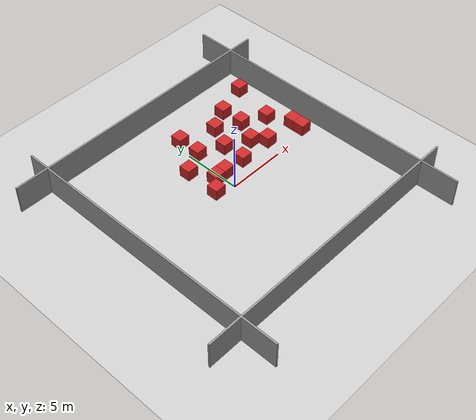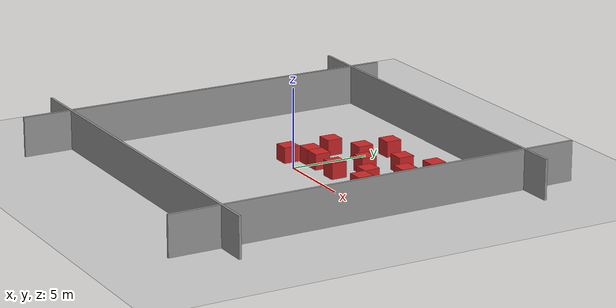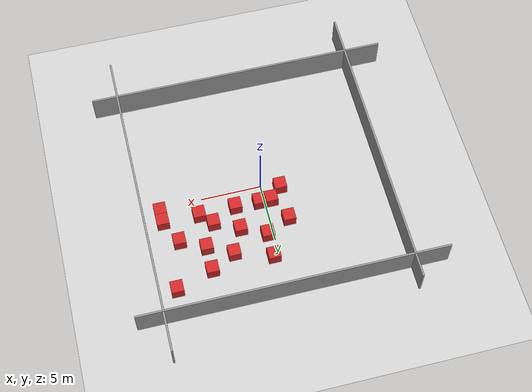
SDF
<sdf version="1.7">
 <world name="default">
  <model name="ground_plane">
   <static>1</static>
   <link name="link">
    <collision name="collision">
     <geometry><plane><normal>0 0 1</normal><size>100 100</size></plane></geometry>
     <surface><friction><ode><mu>100</mu><mu2>50</mu2></ode></friction></surface>
    </collision>
    <visual name="visual">
     <cast_shadows>0</cast_shadows>
     <geometry><plane><normal>0 0 1</normal><size>100 100</size></plane></geometry>
     <material>
      <script><uri>file://media/materials/scripts/gazebo.material</uri><name>Gazebo/Grey</name></script>
     </material>
    </visual>
   </link>
  </model>
  <model name="unit_box_red_0_clone">
   <link name="link">
    <inertial>
     <mass>1</mass>
     <inertia>
      <ixx>0.166667</ixx>
      <ixy>0</ixy>
      <ixz>0</ixz>
      <iyy>0.166667</iyy>
      <iyz>0</iyz>
      <izz>0.166667</izz>
     </inertia>
    </inertial>
    <visual name="visual">
     <geometry><box><size>1 1 1</size></box></geometry>
     <material>
      <script><name>Gazebo/Red</name><uri>file://media/materials/scripts/gazebo.material</uri></script>
      <shader type="pixel"><normal_map>__default__</normal_map></shader>
      <ambient>1 0 0 1</ambient>
      <diffuse>1 0 0 1</diffuse>
      <specular>1 0 0 1</specular>
      <emissive>1 0 0 1</emissive>
     </material>
    </visual>
    <collision name="collision">
     <geometry><box><size>1 1 1</size></box></geometry>
     <surface>
      <friction>
       <ode><mu>1</mu><mu2>1</mu2><fdir1>0 0 0</fdir1><slip1>0</slip1><slip2>0</slip2></ode>
       <torsional>
        <coefficient>1</coefficient>
        <patch_radius>0</patch_radius>
        <surface_radius>0</surface_radius>
        <use_patch_radius>1</use_patch_radius>
        <ode><slip>0</slip></ode>
       </torsional>
      </friction>
      <bounce><restitution_coefficient>0</restitution_coefficient><threshold>1e+06</threshold></bounce>
      <contact>
       <collide_without_contact>0</collide_without_contact>
       <collide_without_contact_bitmask>1</collide_without_contact_bitmask>
       <collide_bitmask>1</collide_bitmask>
       <ode>
        <soft_cfm>0</soft_cfm>
        <soft_erp>0.2</soft_erp>
        <kp>1e+13</kp>
        <kd>1</kd>
        <max_vel>0.01</max_vel>
        <min_depth>0</min_depth>
       </ode>
       <bullet>
        <split_impulse>1</split_impulse>
        <split_impulse_penetration_threshold>-0.01</split_impulse_penetration_threshold>
        <soft_cfm>0</soft_cfm>
        <soft_erp>0.2</soft_erp>
        <kp>1e+13</kp>
        <kd>1</kd>
       </bullet>
      </contact>
     </surface>
    </collision>
   </link>
   <static>0</static>
   <pose>0.486456 1.49281 0.499995 0 1e-05 0</pose>
  </model>
  <model name="unit_box_red_0_clone_0">
   <link name="link">
    <inertial>
     <mass>1</mass>
     <inertia>
      <ixx>0.166667</ixx>
      <ixy>0</ixy>
      <ixz>0</ixz>
      <iyy>0.166667</iyy>
      <iyz>0</iyz>
      <izz>0.166667</izz>
     </inertia>
    </inertial>
    <visual name="visual">
     <geometry><box><size>1 1 1</size></box></geometry>
     <material>
      <script><name>Gazebo/Red</name><uri>file://media/materials/scripts/gazebo.material</uri></script>
      <shader type="pixel"><normal_map>__default__</normal_map></shader>
      <ambient>1 0 0 1</ambient>
      <diffuse>1 0 0 1</diffuse>
      <specular>1 0 0 1</specular>
      <emissive>1 0 0 1</emissive>
     </material>
    </visual>
    <collision name="collision">
     <geometry><box><size>1 1 1</size></box></geometry>
     <surface>
      <friction>
       <ode><mu>1</mu><mu2>1</mu2><fdir1>0 0 0</fdir1><slip1>0</slip1><slip2>0</slip2></ode>
       <torsional>
        <coefficient>1</coefficient>
        <patch_radius>0</patch_radius>
        <surface_radius>0</surface_radius>
        <use_patch_radius>1</use_patch_radius>
        <ode><slip>0</slip></ode>
       </torsional>
      </friction>
      <bounce><restitution_coefficient>0</restitution_coefficient><threshold>1e+06</threshold></bounce>
      <contact>
       <collide_without_contact>0</collide_without_contact>
       <collide_without_contact_bitmask>1</collide_without_contact_bitmask>
       <collide_bitmask>1</collide_bitmask>
       <ode>
        <soft_cfm>0</soft_cfm>
        <soft_erp>0.2</soft_erp>
        <kp>1e+13</kp>
        <kd>1</kd>
        <max_vel>0.01</max_vel>
        <min_depth>0</min_depth>
       </ode>
       <bullet>
        <split_impulse>1</split_impulse>
        <split_impulse_penetration_threshold>-0.01</split_impulse_penetration_threshold>
        <soft_cfm>0</soft_cfm>
        <soft_erp>0.2</soft_erp>
        <kp>1e+13</kp>
        <kd>1</kd>
       </bullet>
      </contact>
     </surface>
    </collision>
   </link>
   <static>0</static>
   <pose>2.47641 1.46765 0.499995 0 1e-05 0</pose>
  </model>
  <model name="unit_box_red_0_clone_4">
   <link name="link">
    <inertial>
     <mass>1</mass>
     <inertia>
      <ixx>0.166667</ixx>
      <ixy>0</ixy>
      <ixz>0</ixz>
      <iyy>0.166667</iyy>
      <iyz>0</iyz>
      <izz>0.166667</izz>
     </inertia>
    </inertial>
    <visual name="visual">
     <geometry><box><size>1 1 1</size></box></geometry>
     <material>
      <script><name>Gazebo/Red</name><uri>file://media/materials/scripts/gazebo.material</uri></script>
      <shader type="pixel"><normal_map>__default__</normal_map></shader>
      <ambient>1 0 0 1</ambient>
      <diffuse>1 0 0 1</diffuse>
      <specular>1 0 0 1</specular>
      <emissive>1 0 0 1</emissive>
     </material>
    </visual>
    <collision name="collision">
     <geometry><box><size>1 1 1</size></box></geometry>
     <surface>
      <friction>
       <ode><mu>1</mu><mu2>1</mu2><fdir1>0 0 0</fdir1><slip1>0</slip1><slip2>0</slip2></ode>
       <torsional>
        <coefficient>1</coefficient>
        <patch_radius>0</patch_radius>
        <surface_radius>0</surface_radius>
        <use_patch_radius>1</use_patch_radius>
        <ode><slip>0</slip></ode>
       </torsional>
      </friction>
      <bounce><restitution_coefficient>0</restitution_coefficient><threshold>1e+06</threshold></bounce>
      <contact>
       <collide_without_contact>0</collide_without_contact>
       <collide_without_contact_bitmask>1</collide_without_contact_bitmask>
       <collide_bitmask>1</collide_bitmask>
       <ode>
        <soft_cfm>0</soft_cfm>
        <soft_erp>0.2</soft_erp>
        <kp>1e+13</kp>
        <kd>1</kd>
        <max_vel>0.01</max_vel>
        <min_depth>0</min_depth>
       </ode>
       <bullet>
        <split_impulse>1</split_impulse>
        <split_impulse_penetration_threshold>-0.01</split_impulse_penetration_threshold>
        <soft_cfm>0</soft_cfm>
        <soft_erp>0.2</soft_erp>
        <kp>1e+13</kp>
        <kd>1</kd>
       </bullet>
      </contact>
     </surface>
    </collision>
   </link>
   <static>0</static>
   <pose>-1.51509 0.49126 0.499995 -0 -1e-05 0.000645</pose>
  </model>
  <model name="unit_box_red_0_clone_5">
   <link name="link">
    <inertial>
     <mass>1</mass>
     <inertia>
      <ixx>0.166667</ixx>
      <ixy>0</ixy>
      <ixz>0</ixz>
      <iyy>0.166667</iyy>
      <iyz>0</iyz>
      <izz>0.166667</izz>
     </inertia>
    </inertial>
    <visual name="visual">
     <geometry><box><size>1 1 1</size></box></geometry>
     <material>
      <script><name>Gazebo/Red</name><uri>file://media/materials/scripts/gazebo.material</uri></script>
      <shader type="pixel"><normal_map>__default__</normal_map></shader>
      <ambient>1 0 0 1</ambient>
      <diffuse>1 0 0 1</diffuse>
      <specular>1 0 0 1</specular>
      <emissive>1 0 0 1</emissive>
     </material>
    </visual>
    <collision name="collision">
     <geometry><box><size>1 1 1</size></box></geometry>
     <surface>
      <friction>
       <ode><mu>1</mu><mu2>1</mu2><fdir1>0 0 0</fdir1><slip1>0</slip1><slip2>0</slip2></ode>
       <torsional>
        <coefficient>1</coefficient>
        <patch_radius>0</patch_radius>
        <surface_radius>0</surface_radius>
        <use_patch_radius>1</use_patch_radius>
        <ode><slip>0</slip></ode>
       </torsional>
      </friction>
      <bounce><restitution_coefficient>0</restitution_coefficient><threshold>1e+06</threshold></bounce>
      <contact>
       <collide_without_contact>0</collide_without_contact>
       <collide_without_contact_bitmask>1</collide_without_contact_bitmask>
       <collide_bitmask>1</collide_bitmask>
       <ode>
        <soft_cfm>0</soft_cfm>
        <soft_erp>0.2</soft_erp>
        <kp>1e+13</kp>
        <kd>1</kd>
        <max_vel>0.01</max_vel>
        <min_depth>0</min_depth>
       </ode>
       <bullet>
        <split_impulse>1</split_impulse>
        <split_impulse_penetration_threshold>-0.01</split_impulse_penetration_threshold>
        <soft_cfm>0</soft_cfm>
        <soft_erp>0.2</soft_erp>
        <kp>1e+13</kp>
        <kd>1</kd>
       </bullet>
      </contact>
     </surface>
    </collision>
   </link>
   <static>0</static>
   <pose>4.5201 2.5135 0.499995 0 1e-05 0.006824</pose>
  </model>
  <model name="unit_box_red_0_clone_6">
   <link name="link">
    <inertial>
     <mass>1</mass>
     <inertia>
      <ixx>0.166667</ixx>
      <ixy>0</ixy>
      <ixz>0</ixz>
      <iyy>0.166667</iyy>
      <iyz>0</iyz>
      <izz>0.166667</izz>
     </inertia>
    </inertial>
    <visual name="visual">
     <geometry><box><size>1 1 1</size></box></geometry>
     <material>
      <script><name>Gazebo/Red</name><uri>file://media/materials/scripts/gazebo.material</uri></script>
      <shader type="pixel"><normal_map>__default__</normal_map></shader>
      <ambient>1 0 0 1</ambient>
      <diffuse>1 0 0 1</diffuse>
      <specular>1 0 0 1</specular>
      <emissive>1 0 0 1</emissive>
     </material>
    </visual>
    <collision name="collision">
     <geometry><box><size>1 1 1</size></box></geometry>
     <surface>
      <friction>
       <ode><mu>1</mu><mu2>1</mu2><fdir1>0 0 0</fdir1><slip1>0</slip1><slip2>0</slip2></ode>
       <torsional>
        <coefficient>1</coefficient>
        <patch_radius>0</patch_radius>
        <surface_radius>0</surface_radius>
        <use_patch_radius>1</use_patch_radius>
        <ode><slip>0</slip></ode>
       </torsional>
      </friction>
      <bounce><restitution_coefficient>0</restitution_coefficient><threshold>1e+06</threshold></bounce>
      <contact>
       <collide_without_contact>0</collide_without_contact>
       <collide_without_contact_bitmask>1</collide_without_contact_bitmask>
       <collide_bitmask>1</collide_bitmask>
       <ode>
        <soft_cfm>0</soft_cfm>
        <soft_erp>0.2</soft_erp>
        <kp>1e+13</kp>
        <kd>1</kd>
        <max_vel>0.01</max_vel>
        <min_depth>0</min_depth>
       </ode>
       <bullet>
        <split_impulse>1</split_impulse>
        <split_impulse_penetration_threshold>-0.01</split_impulse_penetration_threshold>
        <soft_cfm>0</soft_cfm>
        <soft_erp>0.2</soft_erp>
        <kp>1e+13</kp>
        <kd>1</kd>
       </bullet>
      </contact>
     </surface>
    </collision>
   </link>
   <static>0</static>
   <pose>5.48575 1.52037 0.499995 0 -1e-05 0.007591</pose>
  </model>
  <model name="unit_box_red_0_clone_7">
   <link name="link">
    <inertial>
     <mass>1</mass>
     <inertia>
      <ixx>0.166667</ixx>
      <ixy>0</ixy>
      <ixz>0</ixz>
      <iyy>0.166667</iyy>
      <iyz>0</iyz>
      <izz>0.166667</izz>
     </inertia>
    </inertial>
    <visual name="visual">
     <geometry><box><size>1 1 1</size></box></geometry>
     <material>
      <script><name>Gazebo/Red</name><uri>file://media/materials/scripts/gazebo.material</uri></script>
      <shader type="pixel"><normal_map>__default__</normal_map></shader>
      <ambient>1 0 0 1</ambient>
      <diffuse>1 0 0 1</diffuse>
      <specular>1 0 0 1</specular>
      <emissive>1 0 0 1</emissive>
     </material>
    </visual>
    <collision name="collision">
     <geometry><box><size>1 1 1</size></box></geometry>
     <surface>
      <friction>
       <ode><mu>1</mu><mu2>1</mu2><fdir1>0 0 0</fdir1><slip1>0</slip1><slip2>0</slip2></ode>
       <torsional>
        <coefficient>1</coefficient>
        <patch_radius>0</patch_radius>
        <surface_radius>0</surface_radius>
        <use_patch_radius>1</use_patch_radius>
        <ode><slip>0</slip></ode>
       </torsional>
      </friction>
      <bounce><restitution_coefficient>0</restitution_coefficient><threshold>1e+06</threshold></bounce>
      <contact>
       <collide_without_contact>0</collide_without_contact>
       <collide_without_contact_bitmask>1</collide_without_contact_bitmask>
       <collide_bitmask>1</collide_bitmask>
       <ode>
        <soft_cfm>0</soft_cfm>
        <soft_erp>0.2</soft_erp>
        <kp>1e+13</kp>
        <kd>1</kd>
        <max_vel>0.01</max_vel>
        <min_depth>0</min_depth>
       </ode>
       <bullet>
        <split_impulse>1</split_impulse>
        <split_impulse_penetration_threshold>-0.01</split_impulse_penetration_threshold>
        <soft_cfm>0</soft_cfm>
        <soft_erp>0.2</soft_erp>
        <kp>1e+13</kp>
        <kd>1</kd>
       </bullet>
      </contact>
     </surface>
    </collision>
   </link>
   <static>0</static>
   <pose>2.51729 3.51054 0.499995 0 1e-05 0</pose>
  </model>
  <model name="unit_box_red_0_clone_8">
   <link name="link">
    <inertial>
     <mass>1</mass>
     <inertia>
      <ixx>0.166667</ixx>
      <ixy>0</ixy>
      <ixz>0</ixz>
      <iyy>0.166667</iyy>
      <iyz>0</iyz>
      <izz>0.166667</izz>
     </inertia>
    </inertial>
    <visual name="visual">
     <geometry><box><size>1 1 1</size></box></geometry>
     <material>
      <script><name>Gazebo/Red</name><uri>file://media/materials/scripts/gazebo.material</uri></script>
      <shader type="pixel"><normal_map>__default__</normal_map></shader>
      <ambient>1 0 0 1</ambient>
      <diffuse>1 0 0 1</diffuse>
      <specular>1 0 0 1</specular>
      <emissive>1 0 0 1</emissive>
     </material>
    </visual>
    <collision name="collision">
     <geometry><box><size>1 1 1</size></box></geometry>
     <surface>
      <friction>
       <ode><mu>1</mu><mu2>1</mu2><fdir1>0 0 0</fdir1><slip1>0</slip1><slip2>0</slip2></ode>
       <torsional>
        <coefficient>1</coefficient>
        <patch_radius>0</patch_radius>
        <surface_radius>0</surface_radius>
        <use_patch_radius>1</use_patch_radius>
        <ode><slip>0</slip></ode>
       </torsional>
      </friction>
      <bounce><restitution_coefficient>0</restitution_coefficient><threshold>1e+06</threshold></bounce>
      <contact>
       <collide_without_contact>0</collide_without_contact>
       <collide_without_contact_bitmask>1</collide_without_contact_bitmask>
       <collide_bitmask>1</collide_bitmask>
       <ode>
        <soft_cfm>0</soft_cfm>
        <soft_erp>0.2</soft_erp>
        <kp>1e+13</kp>
        <kd>1</kd>
        <max_vel>0.01</max_vel>
        <min_depth>0</min_depth>
       </ode>
       <bullet>
        <split_impulse>1</split_impulse>
        <split_impulse_penetration_threshold>-0.01</split_impulse_penetration_threshold>
        <soft_cfm>0</soft_cfm>
        <soft_erp>0.2</soft_erp>
        <kp>1e+13</kp>
        <kd>1</kd>
       </bullet>
      </contact>
     </surface>
    </collision>
   </link>
   <static>0</static>
   <pose>0.488659 4.49142 0.499995 0 1e-05 0</pose>
  </model>
  <model name="unit_box_red_0_clone_9">
   <link name="link">
    <inertial>
     <mass>1</mass>
     <inertia>
      <ixx>0.166667</ixx>
      <ixy>0</ixy>
      <ixz>0</ixz>
      <iyy>0.166667</iyy>
      <iyz>0</iyz>
      <izz>0.166667</izz>
     </inertia>
    </inertial>
    <visual name="visual">
     <geometry><box><size>1 1 1</size></box></geometry>
     <material>
      <script><name>Gazebo/Red</name><uri>file://media/materials/scripts/gazebo.material</uri></script>
      <shader type="pixel"><normal_map>__default__</normal_map></shader>
      <ambient>1 0 0 1</ambient>
      <diffuse>1 0 0 1</diffuse>
      <specular>1 0 0 1</specular>
      <emissive>1 0 0 1</emissive>
     </material>
    </visual>
    <collision name="collision">
     <geometry><box><size>1 1 1</size></box></geometry>
     <surface>
      <friction>
       <ode><mu>1</mu><mu2>1</mu2><fdir1>0 0 0</fdir1><slip1>0</slip1><slip2>0</slip2></ode>
       <torsional>
        <coefficient>1</coefficient>
        <patch_radius>0</patch_radius>
        <surface_radius>0</surface_radius>
        <use_patch_radius>1</use_patch_radius>
        <ode><slip>0</slip></ode>
       </torsional>
      </friction>
      <bounce><restitution_coefficient>0</restitution_coefficient><threshold>1e+06</threshold></bounce>
      <contact>
       <collide_without_contact>0</collide_without_contact>
       <collide_without_contact_bitmask>1</collide_without_contact_bitmask>
       <collide_bitmask>1</collide_bitmask>
       <ode>
        <soft_cfm>0</soft_cfm>
        <soft_erp>0.2</soft_erp>
        <kp>1e+13</kp>
        <kd>1</kd>
        <max_vel>0.01</max_vel>
        <min_depth>0</min_depth>
       </ode>
       <bullet>
        <split_impulse>1</split_impulse>
        <split_impulse_penetration_threshold>-0.01</split_impulse_penetration_threshold>
        <soft_cfm>0</soft_cfm>
        <soft_erp>0.2</soft_erp>
        <kp>1e+13</kp>
        <kd>1</kd>
       </bullet>
      </contact>
     </surface>
    </collision>
   </link>
   <static>0</static>
   <pose>-1.4954 3.48826 0.499995 0 1e-05 0</pose>
  </model>
  <model name="unit_box_red_0_clone_14">
   <link name="link">
    <inertial>
     <mass>1</mass>
     <inertia>
      <ixx>0.166667</ixx>
      <ixy>0</ixy>
      <ixz>0</ixz>
      <iyy>0.166667</iyy>
      <iyz>0</iyz>
      <izz>0.166667</izz>
     </inertia>
    </inertial>
    <visual name="visual">
     <geometry><box><size>1 1 1</size></box></geometry>
     <material>
      <script><name>Gazebo/Red</name><uri>file://media/materials/scripts/gazebo.material</uri></script>
      <shader type="pixel"><normal_map>__default__</normal_map></shader>
      <ambient>1 0 0 1</ambient>
      <diffuse>1 0 0 1</diffuse>
      <specular>1 0 0 1</specular>
      <emissive>1 0 0 1</emissive>
     </material>
    </visual>
    <collision name="collision">
     <geometry><box><size>1 1 1</size></box></geometry>
     <surface>
      <friction>
       <ode><mu>1</mu><mu2>1</mu2><fdir1>0 0 0</fdir1><slip1>0</slip1><slip2>0</slip2></ode>
       <torsional>
        <coefficient>1</coefficient>
        <patch_radius>0</patch_radius>
        <surface_radius>0</surface_radius>
        <use_patch_radius>1</use_patch_radius>
        <ode><slip>0</slip></ode>
       </torsional>
      </friction>
      <bounce><restitution_coefficient>0</restitution_coefficient><threshold>1e+06</threshold></bounce>
      <contact>
       <collide_without_contact>0</collide_without_contact>
       <collide_without_contact_bitmask>1</collide_without_contact_bitmask>
       <collide_bitmask>1</collide_bitmask>
       <ode>
        <soft_cfm>0</soft_cfm>
        <soft_erp>0.2</soft_erp>
        <kp>1e+13</kp>
        <kd>1</kd>
        <max_vel>0.01</max_vel>
        <min_depth>0</min_depth>
       </ode>
       <bullet>
        <split_impulse>1</split_impulse>
        <split_impulse_penetration_threshold>-0.01</split_impulse_penetration_threshold>
        <soft_cfm>0</soft_cfm>
        <soft_erp>0.2</soft_erp>
        <kp>1e+13</kp>
        <kd>1</kd>
       </bullet>
      </contact>
     </surface>
    </collision>
   </link>
   <static>0</static>
   <pose>5.50451 4.49142 0.499995 0 1e-05 0</pose>
  </model>
  <model name="unit_box_red_0_clone_15">
   <link name="link">
    <inertial>
     <mass>1</mass>
     <inertia>
      <ixx>0.166667</ixx>
      <ixy>0</ixy>
      <ixz>0</ixz>
      <iyy>0.166667</iyy>
      <iyz>0</iyz>
      <izz>0.166667</izz>
     </inertia>
    </inertial>
    <visual name="visual">
     <geometry><box><size>1 1 1</size></box></geometry>
     <material>
      <script><name>Gazebo/Red</name><uri>file://media/materials/scripts/gazebo.material</uri></script>
      <shader type="pixel"><normal_map>__default__</normal_map></shader>
      <ambient>1 0 0 1</ambient>
      <diffuse>1 0 0 1</diffuse>
      <specular>1 0 0 1</specular>
      <emissive>1 0 0 1</emissive>
     </material>
    </visual>
    <collision name="collision">
     <geometry><box><size>1 1 1</size></box></geometry>
     <surface>
      <friction>
       <ode><mu>1</mu><mu2>1</mu2><fdir1>0 0 0</fdir1><slip1>0</slip1><slip2>0</slip2></ode>
       <torsional>
        <coefficient>1</coefficient>
        <patch_radius>0</patch_radius>
        <surface_radius>0</surface_radius>
        <use_patch_radius>1</use_patch_radius>
        <ode><slip>0</slip></ode>
       </torsional>
      </friction>
      <bounce><restitution_coefficient>0</restitution_coefficient><threshold>1e+06</threshold></bounce>
      <contact>
       <collide_without_contact>0</collide_without_contact>
       <collide_without_contact_bitmask>1</collide_without_contact_bitmask>
       <collide_bitmask>1</collide_bitmask>
       <ode>
        <soft_cfm>0</soft_cfm>
        <soft_erp>0.2</soft_erp>
        <kp>1e+13</kp>
        <kd>1</kd>
        <max_vel>0.01</max_vel>
        <min_depth>0</min_depth>
       </ode>
       <bullet>
        <split_impulse>1</split_impulse>
        <split_impulse_penetration_threshold>-0.01</split_impulse_penetration_threshold>
        <soft_cfm>0</soft_cfm>
        <soft_erp>0.2</soft_erp>
        <kp>1e+13</kp>
        <kd>1</kd>
       </bullet>
      </contact>
     </surface>
    </collision>
   </link>
   <static>0</static>
   <pose>3.49817 5.51689 0.499995 0 1e-05 0</pose>
  </model>
  <model name="unit_box_red_0_clone_16">
   <link name="link">
    <inertial>
     <mass>1</mass>
     <inertia>
      <ixx>0.166667</ixx>
      <ixy>0</ixy>
      <ixz>0</ixz>
      <iyy>0.166667</iyy>
      <iyz>0</iyz>
      <izz>0.166667</izz>
     </inertia>
    </inertial>
    <visual name="visual">
     <geometry><box><size>1 1 1</size></box></geometry>
     <material>
      <script><name>Gazebo/Red</name><uri>file://media/materials/scripts/gazebo.material</uri></script>
      <shader type="pixel"><normal_map>__default__</normal_map></shader>
      <ambient>1 0 0 1</ambient>
      <diffuse>1 0 0 1</diffuse>
      <specular>1 0 0 1</specular>
      <emissive>1 0 0 1</emissive>
     </material>
    </visual>
    <collision name="collision">
     <geometry><box><size>1 1 1</size></box></geometry>
     <surface>
      <friction>
       <ode><mu>1</mu><mu2>1</mu2><fdir1>0 0 0</fdir1><slip1>0</slip1><slip2>0</slip2></ode>
       <torsional>
        <coefficient>1</coefficient>
        <patch_radius>0</patch_radius>
        <surface_radius>0</surface_radius>
        <use_patch_radius>1</use_patch_radius>
        <ode><slip>0</slip></ode>
       </torsional>
      </friction>
      <bounce><restitution_coefficient>0</restitution_coefficient><threshold>1e+06</threshold></bounce>
      <contact>
       <collide_without_contact>0</collide_without_contact>
       <collide_without_contact_bitmask>1</collide_without_contact_bitmask>
       <collide_bitmask>1</collide_bitmask>
       <ode>
        <soft_cfm>0</soft_cfm>
        <soft_erp>0.2</soft_erp>
        <kp>1e+13</kp>
        <kd>1</kd>
        <max_vel>0.01</max_vel>
        <min_depth>0</min_depth>
       </ode>
       <bullet>
        <split_impulse>1</split_impulse>
        <split_impulse_penetration_threshold>-0.01</split_impulse_penetration_threshold>
        <soft_cfm>0</soft_cfm>
        <soft_erp>0.2</soft_erp>
        <kp>1e+13</kp>
        <kd>1</kd>
       </bullet>
      </contact>
     </surface>
    </collision>
   </link>
   <static>0</static>
   <pose>5.48222 6.52006 0.499995 0 1e-05 0</pose>
  </model>
  <model name="wall_20x20">
   <pose>-0.40857 -0.043281 0 0 -0 0</pose>
   <link name="Wall_10">
    <collision name="Wall_10_Collision">
     <geometry><box><size>26.5 0.15 2.5</size></box></geometry>
     <pose>0 0 1.25 0 -0 0</pose>
    </collision>
    <visual name="Wall_10_Visual">
     <pose>0 0 1.25 0 -0 0</pose>
     <geometry><box><size>26.5 0.15 2.5</size></box></geometry>
     <material>
      <script><uri>file://media/materials/scripts/gazebo.material</uri><name>Gazebo/Grey</name></script>
      <ambient>1 1 1 1</ambient>
     </material>
     <meta><layer>0</layer></meta>
    </visual>
    <pose>10.3388 -0 0 0 -0 1.5708</pose>
   </link>
   <link name="Wall_4">
    <collision name="Wall_4_Collision">
     <geometry><box><size>25 0.15 2.5</size></box></geometry>
     <pose>0 0 1.25 0 -0 0</pose>
    </collision>
    <visual name="Wall_4_Visual">
     <pose>0 0 1.25 0 -0 0</pose>
     <geometry><box><size>25 0.15 2.5</size></box></geometry>
     <material>
      <script><uri>file://media/materials/scripts/gazebo.material</uri><name>Gazebo/Grey</name></script>
      <ambient>1 1 1 1</ambient>
     </material>
     <meta><layer>0</layer></meta>
    </visual>
    <pose>-0.041839 -9.9552 0 0 -0 0</pose>
   </link>
   <link name="Wall_6">
    <collision name="Wall_6_Collision">
     <geometry><box><size>25 0.15 2.5</size></box></geometry>
     <pose>0 0 1.25 0 -0 0</pose>
    </collision>
    <visual name="Wall_6_Visual">
     <pose>0 0 1.25 0 -0 0</pose>
     <geometry><box><size>25 0.15 2.5</size></box></geometry>
     <material>
      <script><uri>file://media/materials/scripts/gazebo.material</uri><name>Gazebo/Grey</name></script>
      <ambient>1 1 1 1</ambient>
     </material>
     <meta><layer>0</layer></meta>
    </visual>
    <pose>0.041839 9.9241 0 0 -0 0</pose>
   </link>
   <link name="Wall_8">
    <collision name="Wall_8_Collision">
     <geometry><box><size>25 0.15 2.5</size></box></geometry>
     <pose>0 0 1.25 0 -0 0</pose>
    </collision>
    <visual name="Wall_8_Visual">
     <pose>0 0 1.25 0 -0 0</pose>
     <geometry><box><size>25 0.15 2.5</size></box></geometry>
     <material>
      <script><uri>file://media/materials/scripts/gazebo.material</uri><name>Gazebo/Grey</name></script>
      <ambient>1 1 1 1</ambient>
     </material>
     <meta><layer>0</layer></meta>
    </visual>
    <pose>-9.52541 -0.606599 0 0 -0 -1.5708</pose>
   </link>
   <static>1</static>
  </model>
  <model name="unit_box_red_0_clone_16_clone">
   <link name="link">
    <inertial>
     <mass>1</mass>
     <inertia>
      <ixx>0.166667</ixx>
      <ixy>0</ixy>
      <ixz>0</ixz>
      <iyy>0.166667</iyy>
      <iyz>0</iyz>
      <izz>0.166667</izz>
     </inertia>
    </inertial>
    <visual name="visual">
     <geometry><box><size>1 1 1</size></box></geometry>
     <material>
      <script><name>Gazebo/Red</name><uri>file://media/materials/scripts/gazebo.material</uri></script>
      <shader type="pixel"><normal_map>__default__</normal_map></shader>
      <ambient>1 0 0 1</ambient>
      <diffuse>1 0 0 1</diffuse>
      <specular>1 0 0 1</specular>
      <emissive>1 0 0 1</emissive>
     </material>
    </visual>
    <collision name="collision">
     <geometry><box><size>1 1 1</size></box></geometry>
     <surface>
      <friction>
       <ode><mu>1</mu><mu2>1</mu2><fdir1>0 0 0</fdir1><slip1>0</slip1><slip2>0</slip2></ode>
       <torsional>
        <coefficient>1</coefficient>
        <patch_radius>0</patch_radius>
        <surface_radius>0</surface_radius>
        <use_patch_radius>1</use_patch_radius>
        <ode><slip>0</slip></ode>
       </torsional>
      </friction>
      <bounce><restitution_coefficient>0</restitution_coefficient><threshold>1e+06</threshold></bounce>
      <contact>
       <collide_without_contact>0</collide_without_contact>
       <collide_without_contact_bitmask>1</collide_without_contact_bitmask>
       <collide_bitmask>1</collide_bitmask>
       <ode>
        <soft_cfm>0</soft_cfm>
        <soft_erp>0.2</soft_erp>
        <kp>1e+13</kp>
        <kd>1</kd>
        <max_vel>0.01</max_vel>
        <min_depth>0</min_depth>
       </ode>
       <bullet>
        <split_impulse>1</split_impulse>
        <split_impulse_penetration_threshold>-0.01</split_impulse_penetration_threshold>
        <soft_cfm>0</soft_cfm>
        <soft_erp>0.2</soft_erp>
        <kp>1e+13</kp>
        <kd>1</kd>
       </bullet>
      </contact>
     </surface>
    </collision>
   </link>
   <static>0</static>
   <pose>0.48706 6.48435 0.499995 0 1e-05 0</pose>
  </model>
  <model name="unit_box_red_0_clone_16_clone_4">
   <link name="link">
    <inertial>
     <mass>1</mass>
     <inertia>
      <ixx>0.166667</ixx>
      <ixy>0</ixy>
      <ixz>0</ixz>
      <iyy>0.166667</iyy>
      <iyz>0</iyz>
      <izz>0.166667</izz>
     </inertia>
    </inertial>
    <visual name="visual">
     <geometry><box><size>1 1 1</size></box></geometry>
     <material>
      <script><name>Gazebo/Red</name><uri>file://media/materials/scripts/gazebo.material</uri></script>
      <shader type="pixel"><normal_map>__default__</normal_map></shader>
      <ambient>1 0 0 1</ambient>
      <diffuse>1 0 0 1</diffuse>
      <specular>1 0 0 1</specular>
      <emissive>1 0 0 1</emissive>
     </material>
    </visual>
    <collision name="collision">
     <geometry><box><size>1 1 1</size></box></geometry>
     <surface>
      <friction>
       <ode><mu>1</mu><mu2>1</mu2><fdir1>0 0 0</fdir1><slip1>0</slip1><slip2>0</slip2></ode>
       <torsional>
        <coefficient>1</coefficient>
        <patch_radius>0</patch_radius>
        <surface_radius>0</surface_radius>
        <use_patch_radius>1</use_patch_radius>
        <ode><slip>0</slip></ode>
       </torsional>
      </friction>
      <bounce><restitution_coefficient>0</restitution_coefficient><threshold>1e+06</threshold></bounce>
      <contact>
       <collide_without_contact>0</collide_without_contact>
       <collide_without_contact_bitmask>1</collide_without_contact_bitmask>
       <collide_bitmask>1</collide_bitmask>
       <ode>
        <soft_cfm>0</soft_cfm>
        <soft_erp>0.2</soft_erp>
        <kp>1e+13</kp>
        <kd>1</kd>
        <max_vel>0.01</max_vel>
        <min_depth>0</min_depth>
       </ode>
       <bullet>
        <split_impulse>1</split_impulse>
        <split_impulse_penetration_threshold>-0.01</split_impulse_penetration_threshold>
        <soft_cfm>0</soft_cfm>
        <soft_erp>0.2</soft_erp>
        <kp>1e+13</kp>
        <kd>1</kd>
       </bullet>
      </contact>
     </surface>
    </collision>
   </link>
   <static>0</static>
   <pose>7.51314 3.48793 0.499995 0 1e-05 0</pose>
  </model>
  <model name="unit_box_red_0_clone_16_clone_5">
   <link name="link">
    <inertial>
     <mass>1</mass>
     <inertia>
      <ixx>0.166667</ixx>
      <ixy>0</ixy>
      <ixz>0</ixz>
      <iyy>0.166667</iyy>
      <iyz>0</iyz>
      <izz>0.166667</izz>
     </inertia>
    </inertial>
    <visual name="visual">
     <geometry><box><size>1 1 1</size></box></geometry>
     <material>
      <script><name>Gazebo/Red</name><uri>file://media/materials/scripts/gazebo.material</uri></script>
      <shader type="pixel"><normal_map>__default__</normal_map></shader>
      <ambient>1 0 0 1</ambient>
      <diffuse>1 0 0 1</diffuse>
      <specular>1 0 0 1</specular>
      <emissive>1 0 0 1</emissive>
     </material>
    </visual>
    <collision name="collision">
     <geometry><box><size>1 1 1</size></box></geometry>
     <surface>
      <friction>
       <ode><mu>1</mu><mu2>1</mu2><fdir1>0 0 0</fdir1><slip1>0</slip1><slip2>0</slip2></ode>
       <torsional>
        <coefficient>1</coefficient>
        <patch_radius>0</patch_radius>
        <surface_radius>0</surface_radius>
        <use_patch_radius>1</use_patch_radius>
        <ode><slip>0</slip></ode>
       </torsional>
      </friction>
      <bounce><restitution_coefficient>0</restitution_coefficient><threshold>1e+06</threshold></bounce>
      <contact>
       <collide_without_contact>0</collide_without_contact>
       <collide_without_contact_bitmask>1</collide_without_contact_bitmask>
       <collide_bitmask>1</collide_bitmask>
       <ode>
        <soft_cfm>0</soft_cfm>
        <soft_erp>0.2</soft_erp>
        <kp>1e+13</kp>
        <kd>1</kd>
        <max_vel>0.01</max_vel>
        <min_depth>0</min_depth>
       </ode>
       <bullet>
        <split_impulse>1</split_impulse>
        <split_impulse_penetration_threshold>-0.01</split_impulse_penetration_threshold>
        <soft_cfm>0</soft_cfm>
        <soft_erp>0.2</soft_erp>
        <kp>1e+13</kp>
        <kd>1</kd>
       </bullet>
      </contact>
     </surface>
    </collision>
   </link>
   <static>0</static>
   <pose>8.4775 1.47372 0.499995 -0 -1e-05 -9e-06</pose>
  </model>
  <model name="unit_box_red_0_clone_16_clone_6">
   <link name="link">
    <inertial>
     <mass>1</mass>
     <inertia>
      <ixx>0.166667</ixx>
      <ixy>0</ixy>
      <ixz>0</ixz>
      <iyy>0.166667</iyy>
      <iyz>0</iyz>
      <izz>0.166667</izz>
     </inertia>
    </inertial>
    <visual name="visual">
     <geometry><box><size>1 1 1</size></box></geometry>
     <material>
      <script><name>Gazebo/Red</name><uri>file://media/materials/scripts/gazebo.material</uri></script>
      <shader type="pixel"><normal_map>__default__</normal_map></shader>
      <ambient>1 0 0 1</ambient>
      <diffuse>1 0 0 1</diffuse>
      <specular>1 0 0 1</specular>
      <emissive>1 0 0 1</emissive>
     </material>
    </visual>
    <collision name="collision">
     <geometry><box><size>1 1 1</size></box></geometry>
     <surface>
      <friction>
       <ode><mu>1</mu><mu2>1</mu2><fdir1>0 0 0</fdir1><slip1>0</slip1><slip2>0</slip2></ode>
       <torsional>
        <coefficient>1</coefficient>
        <patch_radius>0</patch_radius>
        <surface_radius>0</surface_radius>
        <use_patch_radius>1</use_patch_radius>
        <ode><slip>0</slip></ode>
       </torsional>
      </friction>
      <bounce><restitution_coefficient>0</restitution_coefficient><threshold>1e+06</threshold></bounce>
      <contact>
       <collide_without_contact>0</collide_without_contact>
       <collide_without_contact_bitmask>1</collide_without_contact_bitmask>
       <collide_bitmask>1</collide_bitmask>
       <ode>
        <soft_cfm>0</soft_cfm>
        <soft_erp>0.2</soft_erp>
        <kp>1e+13</kp>
        <kd>1</kd>
        <max_vel>0.01</max_vel>
        <min_depth>0</min_depth>
       </ode>
       <bullet>
        <split_impulse>1</split_impulse>
        <split_impulse_penetration_threshold>-0.01</split_impulse_penetration_threshold>
        <soft_cfm>0</soft_cfm>
        <soft_erp>0.2</soft_erp>
        <kp>1e+13</kp>
        <kd>1</kd>
       </bullet>
      </contact>
     </surface>
    </collision>
   </link>
   <static>0</static>
   <pose>8.47751 0.47371 0.499995 0 1e-05 -1e-06</pose>
  </model>
  <model name="unit_box_red_0_clone_16_clone_23">
   <link name="link">
    <inertial>
     <mass>1</mass>
     <inertia>
      <ixx>0.166667</ixx>
      <ixy>0</ixy>
      <ixz>0</ixz>
      <iyy>0.166667</iyy>
      <iyz>0</iyz>
      <izz>0.166667</izz>
     </inertia>
    </inertial>
    <visual name="visual">
     <geometry><box><size>1 1 1</size></box></geometry>
     <material>
      <script><name>Gazebo/Red</name><uri>file://media/materials/scripts/gazebo.material</uri></script>
      <shader type="pixel"><normal_map>__default__</normal_map></shader>
      <ambient>1 0 0 1</ambient>
      <diffuse>1 0 0 1</diffuse>
      <specular>1 0 0 1</specular>
      <emissive>1 0 0 1</emissive>
     </material>
    </visual>
    <collision name="collision">
     <geometry><box><size>1 1 1</size></box></geometry>
     <surface>
      <friction>
       <ode><mu>1</mu><mu2>1</mu2><fdir1>0 0 0</fdir1><slip1>0</slip1><slip2>0</slip2></ode>
       <torsional>
        <coefficient>1</coefficient>
        <patch_radius>0</patch_radius>
        <surface_radius>0</surface_radius>
        <use_patch_radius>1</use_patch_radius>
        <ode><slip>0</slip></ode>
       </torsional>
      </friction>
      <bounce><restitution_coefficient>0</restitution_coefficient><threshold>1e+06</threshold></bounce>
      <contact>
       <collide_without_contact>0</collide_without_contact>
       <collide_without_contact_bitmask>1</collide_without_contact_bitmask>
       <collide_bitmask>1</collide_bitmask>
       <ode>
        <soft_cfm>0</soft_cfm>
        <soft_erp>0.2</soft_erp>
        <kp>1e+13</kp>
        <kd>1</kd>
        <max_vel>0.01</max_vel>
        <min_depth>0</min_depth>
       </ode>
       <bullet>
        <split_impulse>1</split_impulse>
        <split_impulse_penetration_threshold>-0.01</split_impulse_penetration_threshold>
        <soft_cfm>0</soft_cfm>
        <soft_erp>0.2</soft_erp>
        <kp>1e+13</kp>
        <kd>1</kd>
       </bullet>
      </contact>
     </surface>
    </collision>
   </link>
   <static>0</static>
   <pose>8.51196 7.5176 0.499995 0 1e-05 0</pose>
  </model>
  <model name="unit_box_red_0_clone_clone">
   <link name="link">
    <inertial>
     <mass>1</mass>
     <inertia>
      <ixx>0.166667</ixx>
      <ixy>0</ixy>
      <ixz>0</ixz>
      <iyy>0.166667</iyy>
      <iyz>0</iyz>
      <izz>0.166667</izz>
     </inertia>
    </inertial>
    <visual name="visual">
     <geometry><box><size>1 1 1</size></box></geometry>
     <material>
      <script><name>Gazebo/Red</name><uri>file://media/materials/scripts/gazebo.material</uri></script>
      <shader type="pixel"><normal_map>__default__</normal_map></shader>
      <ambient>1 0 0 1</ambient>
      <diffuse>1 0 0 1</diffuse>
      <specular>1 0 0 1</specular>
      <emissive>1 0 0 1</emissive>
     </material>
    </visual>
    <collision name="collision">
     <geometry><box><size>1 1 1</size></box></geometry>
     <surface>
      <friction>
       <ode><mu>1</mu><mu2>1</mu2><fdir1>0 0 0</fdir1><slip1>0</slip1><slip2>0</slip2></ode>
       <torsional>
        <coefficient>1</coefficient>
        <patch_radius>0</patch_radius>
        <surface_radius>0</surface_radius>
        <use_patch_radius>1</use_patch_radius>
        <ode><slip>0</slip></ode>
       </torsional>
      </friction>
      <bounce><restitution_coefficient>0</restitution_coefficient><threshold>1e+06</threshold></bounce>
      <contact>
       <collide_without_contact>0</collide_without_contact>
       <collide_without_contact_bitmask>1</collide_without_contact_bitmask>
       <collide_bitmask>1</collide_bitmask>
       <ode>
        <soft_cfm>0</soft_cfm>
        <soft_erp>0.2</soft_erp>
        <kp>1e+13</kp>
        <kd>1</kd>
        <max_vel>0.01</max_vel>
        <min_depth>0</min_depth>
       </ode>
       <bullet>
        <split_impulse>1</split_impulse>
        <split_impulse_penetration_threshold>-0.01</split_impulse_penetration_threshold>
        <soft_cfm>0</soft_cfm>
        <soft_erp>0.2</soft_erp>
        <kp>1e+13</kp>
        <kd>1</kd>
       </bullet>
      </contact>
     </surface>
    </collision>
   </link>
   <static>0</static>
   <pose>-0.518476 1.5011 0.499995 -1e-05 -0 0</pose>
  </model>
 </world>
</sdf>
